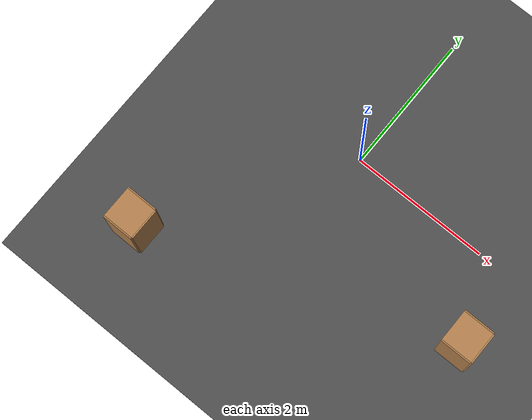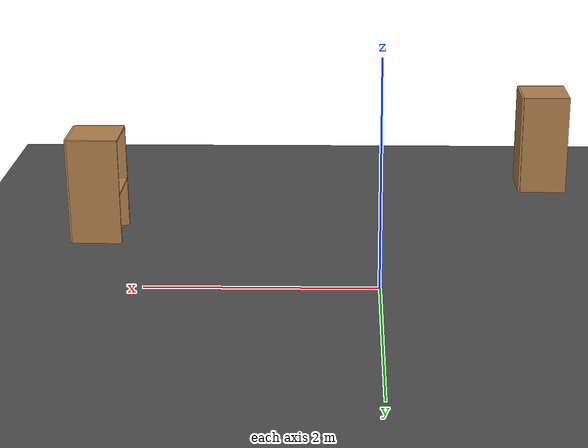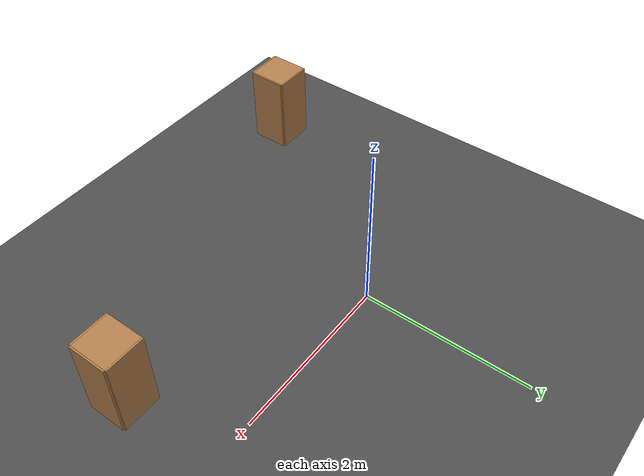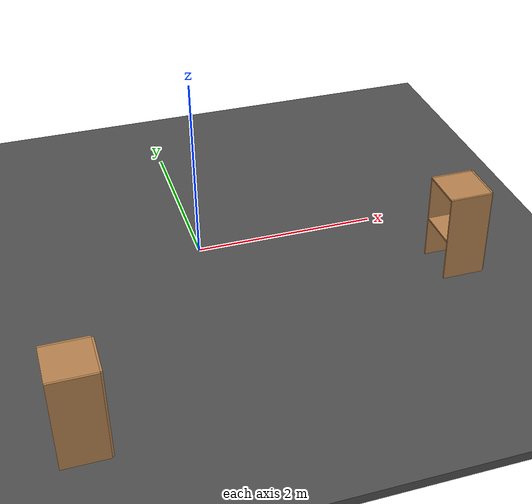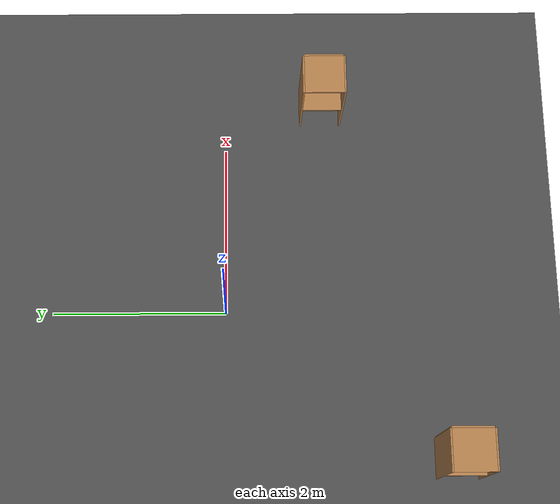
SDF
<sdf version="1.7">
 <world name="default">
  <model name="ground_plane">
   <static>1</static>
   <link name="link">
    <collision name="collision">
     <geometry><plane><normal>0 0 1</normal><size>100 100</size></plane></geometry>
     <surface>
      <contact><collide_bitmask>65535</collide_bitmask></contact>
      <friction><ode><mu>100</mu><mu2>50</mu2></ode></friction>
     </surface>
    </collision>
    <visual name="visual">
     <cast_shadows>0</cast_shadows>
     <geometry><plane><normal>0 0 1</normal><size>100 100</size></plane></geometry>
     <material>
      <script><uri>file://media/materials/scripts/gazebo.material</uri><name>Gazebo/Grey</name></script>
     </material>
    </visual>
   </link>
  </model>
  <model name="asphalt_plane">
   <static>1</static>
   <link name="link">
    <collision name="collision"><geometry><box><size>20 20 0.1</size></box></geometry></collision>
    <visual name="visual">
     <cast_shadows>0</cast_shadows>
     <geometry><box><size>20 20 0.1</size></box></geometry>
     <material>
      <script>
       <uri>model://asphalt_plane/materials/scripts</uri>
       <uri>model://asphalt_plane/materials/textures</uri>
       <name>vrc/asphalt</name>
      </script>
     </material>
    </visual>
   </link>
   <pose>0.032164 -0.016772 0 0 -0 0</pose>
  </model>
  <model name="cabinet_3">
   <static>1</static>
   <link name="cabinet_bottom_plate">
    <inertial>
     <pose>0 0 -1 0 -0 0</pose>
     <inertia><ixx>2.05</ixx><ixy>0</ixy><ixz>0</ixz><iyy>2.05</iyy><iyz>0</iyz><izz>2.05</izz></inertia>
     <mass>25</mass>
    </inertial>
    <collision name="cabinet_bottom_plate_geom">
     <pose>0 0 0.01 0 -0 0</pose>
     <geometry><box><size>0.45 0.45 0.02</size></box></geometry>
    </collision>
    <visual name="cabinet_bottom_plate_geom_visual">
     <pose>0 0 0.01 0 -0 0</pose>
     <geometry><box><size>0.45 0.45 0.02</size></box></geometry>
     <material>
      <script><uri>file://media/materials/scripts/gazebo.material</uri><name>Gazebo/Wood</name></script>
     </material>
    </visual>
    <collision name="cabinet_bottom_plate_geom_cabinet_back_plate">
     <pose>0.235 0 0.51 0 -0 0</pose>
     <geometry><box><size>0.02 0.45 1.02</size></box></geometry>
    </collision>
    <visual name="cabinet_bottom_plate_geom_cabinet_back_plate_visual">
     <pose>0.235 0 0.51 0 -0 0</pose>
     <geometry><box><size>0.02 0.45 1.02</size></box></geometry>
     <material>
      <script><uri>file://media/materials/scripts/gazebo.material</uri><name>Gazebo/Wood</name></script>
     </material>
    </visual>
    <collision name="cabinet_bottom_plate_geom_cabinet_left_plate">
     <pose>0 0.235 0.51 0 -0 0</pose>
     <geometry><box><size>0.45 0.02 1.02</size></box></geometry>
    </collision>
    <visual name="cabinet_bottom_plate_geom_cabinet_left_plate_visual">
     <pose>0 0.235 0.51 0 -0 0</pose>
     <geometry><box><size>0.45 0.02 1.02</size></box></geometry>
     <material>
      <script><uri>file://media/materials/scripts/gazebo.material</uri><name>Gazebo/Wood</name></script>
     </material>
    </visual>
    <collision name="cabinet_bottom_plate_geom_cabinet_middle_plate">
     <pose>0 0 0.51 0 -0 0</pose>
     <geometry><box><size>0.45 0.45 0.02</size></box></geometry>
    </collision>
    <visual name="cabinet_bottom_plate_geom_cabinet_middle_plate_visual">
     <pose>0 0 0.51 0 -0 0</pose>
     <geometry><box><size>0.45 0.45 0.02</size></box></geometry>
     <material>
      <script><uri>file://media/materials/scripts/gazebo.material</uri><name>Gazebo/Wood</name></script>
     </material>
    </visual>
    <collision name="cabinet_bottom_plate_geom_cabinet_right_plate">
     <pose>0 -0.235 0.51 0 -0 0</pose>
     <geometry><box><size>0.45 0.02 1.02</size></box></geometry>
    </collision>
    <visual name="cabinet_bottom_plate_geom_cabinet_right_plate_visual">
     <pose>0 -0.235 0.51 0 -0 0</pose>
     <geometry><box><size>0.45 0.02 1.02</size></box></geometry>
     <material>
      <script><uri>file://media/materials/scripts/gazebo.material</uri><name>Gazebo/Wood</name></script>
     </material>
    </visual>
    <collision name="cabinet_bottom_plate_geom_cabinet_top_plate">
     <pose>0 0 1.01 0 -0 0</pose>
     <geometry><box><size>0.45 0.45 0.02</size></box></geometry>
    </collision>
    <visual name="cabinet_bottom_plate_geom_cabinet_top_plate_visual">
     <pose>0 0 1.01 0 -0 0</pose>
     <geometry><box><size>0.45 0.45 0.02</size></box></geometry>
     <material>
      <script><uri>file://media/materials/scripts/gazebo.material</uri><name>Gazebo/Wood</name></script>
     </material>
    </visual>
   </link>
   <pose>2.54303 -1.126 0 0 -0 0</pose>
  </model>
  <model name="cabinet_4">
   <static>1</static>
   <link name="cabinet_bottom_plate">
    <inertial>
     <pose>0 0 -1 0 -0 0</pose>
     <inertia><ixx>2.05</ixx><ixy>0</ixy><ixz>0</ixz><iyy>2.05</iyy><iyz>0</iyz><izz>2.05</izz></inertia>
     <mass>25</mass>
    </inertial>
    <collision name="cabinet_bottom_plate_geom">
     <pose>0 0 0.01 0 -0 0</pose>
     <geometry><box><size>0.45 0.45 0.02</size></box></geometry>
    </collision>
    <visual name="cabinet_bottom_plate_geom_visual">
     <pose>0 0 0.01 0 -0 0</pose>
     <geometry><box><size>0.45 0.45 0.02</size></box></geometry>
     <material>
      <script><uri>file://media/materials/scripts/gazebo.material</uri><name>Gazebo/Wood</name></script>
     </material>
    </visual>
    <collision name="cabinet_bottom_plate_geom_cabinet_back_plate">
     <pose>0.235 0 0.51 0 -0 0</pose>
     <geometry><box><size>0.02 0.45 1.02</size></box></geometry>
    </collision>
    <visual name="cabinet_bottom_plate_geom_cabinet_back_plate_visual">
     <pose>0.235 0 0.51 0 -0 0</pose>
     <geometry><box><size>0.02 0.45 1.02</size></box></geometry>
     <material>
      <script><uri>file://media/materials/scripts/gazebo.material</uri><name>Gazebo/Wood</name></script>
     </material>
    </visual>
    <collision name="cabinet_bottom_plate_geom_cabinet_left_plate">
     <pose>0 0.235 0.51 0 -0 0</pose>
     <geometry><box><size>0.45 0.02 1.02</size></box></geometry>
    </collision>
    <visual name="cabinet_bottom_plate_geom_cabinet_left_plate_visual">
     <pose>0 0.235 0.51 0 -0 0</pose>
     <geometry><box><size>0.45 0.02 1.02</size></box></geometry>
     <material>
      <script><uri>file://media/materials/scripts/gazebo.material</uri><name>Gazebo/Wood</name></script>
     </material>
    </visual>
    <collision name="cabinet_bottom_plate_geom_cabinet_middle_plate">
     <pose>0 0 0.51 0 -0 0</pose>
     <geometry><box><size>0.45 0.45 0.02</size></box></geometry>
    </collision>
    <visual name="cabinet_bottom_plate_geom_cabinet_middle_plate_visual">
     <pose>0 0 0.51 0 -0 0</pose>
     <geometry><box><size>0.45 0.45 0.02</size></box></geometry>
     <material>
      <script><uri>file://media/materials/scripts/gazebo.material</uri><name>Gazebo/Wood</name></script>
     </material>
    </visual>
    <collision name="cabinet_bottom_plate_geom_cabinet_right_plate">
     <pose>0 -0.235 0.51 0 -0 0</pose>
     <geometry><box><size>0.45 0.02 1.02</size></box></geometry>
    </collision>
    <visual name="cabinet_bottom_plate_geom_cabinet_right_plate_visual">
     <pose>0 -0.235 0.51 0 -0 0</pose>
     <geometry><box><size>0.45 0.02 1.02</size></box></geometry>
     <material>
      <script><uri>file://media/materials/scripts/gazebo.material</uri><name>Gazebo/Wood</name></script>
     </material>
    </visual>
    <collision name="cabinet_bottom_plate_geom_cabinet_top_plate">
     <pose>0 0 1.01 0 -0 0</pose>
     <geometry><box><size>0.45 0.45 0.02</size></box></geometry>
    </collision>
    <visual name="cabinet_bottom_plate_geom_cabinet_top_plate_visual">
     <pose>0 0 1.01 0 -0 0</pose>
     <geometry><box><size>0.45 0.45 0.02</size></box></geometry>
     <material>
      <script><uri>file://media/materials/scripts/gazebo.material</uri><name>Gazebo/Wood</name></script>
     </material>
    </visual>
   </link>
   <pose>-1.67135 -2.56756 0 0 -0 0</pose>
  </model>
 </world>
</sdf>
